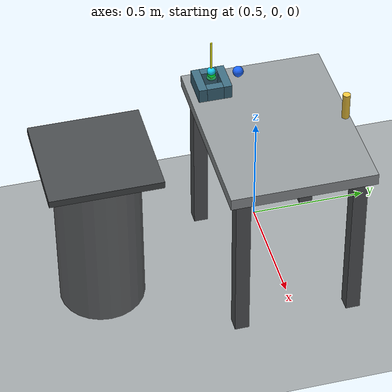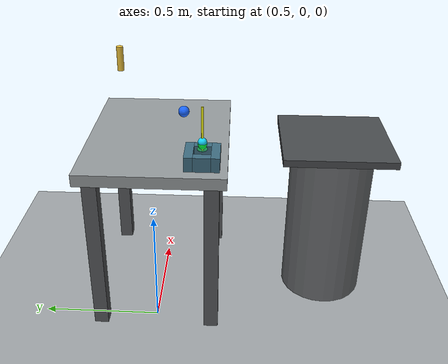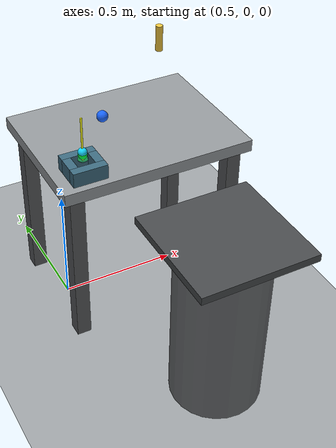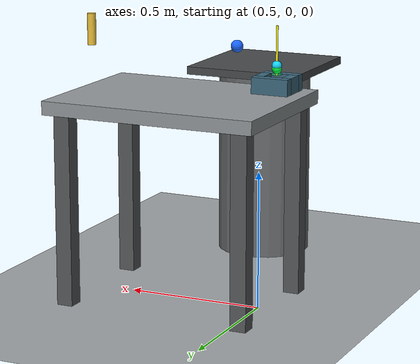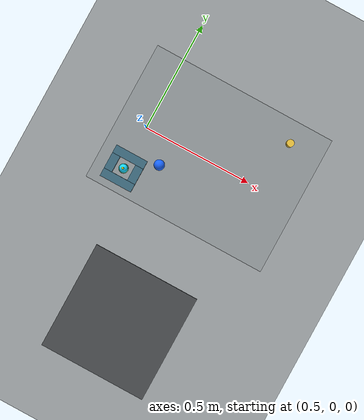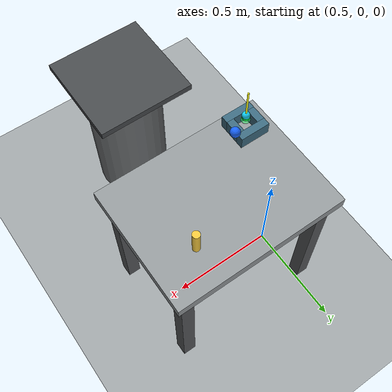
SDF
<?xml version="1.0"?>
<sdf version="1.9">
  <world name="peg_in_hole_insertion_validation_world">
    <physics name="1ms" type="ignored">
      <max_step_size>0.001</max_step_size>
      <real_time_factor>1.0</real_time_factor>
      <real_time_update_rate>1000</real_time_update_rate>
    </physics>

    <plugin name="gz::sim::systems::Physics" filename="ignition-gazebo-physics-system"/>
    <plugin name="gz::sim::systems::UserCommands" filename="ignition-gazebo-user-commands-system"/>
    <plugin name="gz::sim::systems::SceneBroadcaster" filename="ignition-gazebo-scene-broadcaster-system"/>
    <plugin name="gz::sim::systems::Contact" filename="ignition-gazebo-contact-system"/>

    <gravity>0 0 -9.81</gravity>
    <magnetic_field>6.0e-6 2.3e-5 -4.2e-5</magnetic_field>
    <atmosphere type="adiabatic"/>

    <scene>
      <ambient>0.45 0.45 0.45 1</ambient>
      <background>0.72 0.74 0.76 1</background>
      <shadows>true</shadows>
    </scene>

    <model name="ground_plane">
      <static>true</static>
      <link name="link">
        <collision name="collision">
          <geometry><plane><normal>0 0 1</normal><size>20 20</size></plane></geometry>
        </collision>
        <visual name="visual">
          <geometry><plane><normal>0 0 1</normal><size>20 20</size></plane></geometry>
          <material>
            <ambient>0.55 0.57 0.58 1</ambient>
            <diffuse>0.62 0.64 0.65 1</diffuse>
          </material>
        </visual>
      </link>
    </model>

    <include>
      <name>work_table</name>
      <uri>model://work_table</uri>
      <pose>0.80 0 0 0 0 0</pose>
    </include>

    <include>
      <name>robot_pedestal</name>
      <uri>model://robot_pedestal</uri>
      <pose>0.80 -0.75 0.0 0 0 0</pose>
    </include>

    <model name="peg">
      <static>true</static>
      <pose>1.05 0.20 1.000 0 0 0</pose>
      <link name="peg_link">
        <gravity>false</gravity>
        <inertial>
          <mass>0.08</mass>
          <inertia>
            <ixx>8.466667e-05</ixx>
            <iyy>8.466667e-05</iyy>
            <izz>9.000000e-06</izz>
            <ixy>0</ixy>
            <ixz>0</ixz>
            <iyz>0</iyz>
          </inertia>
        </inertial>
        <collision name="peg_collision">
          <geometry>
            <cylinder>
              <radius>0.015</radius>
              <length>0.110</length>
            </cylinder>
          </geometry>
          <surface>
            <contact>
              <ode>
                <kp>3000</kp>
                <kd>40</kd>
              </ode>
            </contact>
            <friction>
              <ode>
                <mu>0.8</mu>
                <mu2>0.8</mu2>
              </ode>
            </friction>
          </surface>
        </collision>
        <visual name="peg_visual">
          <geometry>
            <cylinder>
              <radius>0.015</radius>
              <length>0.110</length>
            </cylinder>
          </geometry>
          <material>
            <ambient>0.80 0.68 0.20 1</ambient>
            <diffuse>0.95 0.78 0.24 1</diffuse>
            <specular>0.35 0.30 0.12 1</specular>
          </material>
        </visual>
        <sensor name="peg_contact_sensor" type="contact">
          <always_on>true</always_on>
          <update_rate>100.0</update_rate>
          <topic>/world/peg_in_hole_insertion_validation_world/model/peg/link/peg_link/sensor/peg_contact_sensor/contact</topic>
          <contact>
            <collision>peg_collision</collision>
          </contact>
        </sensor>
        <sensor name="peg_compat_contact_sensor" type="contact">
          <always_on>true</always_on>
          <update_rate>100.0</update_rate>
          <topic>/gazebo/contacts/peg</topic>
          <contact>
            <collision>peg_collision</collision>
          </contact>
        </sensor>
      </link>
    </model>

    <model name="hole_block">
      <static>true</static>
      <pose>0.52 -0.20 0.78 0 0 0</pose>
      <link name="hole_block_link">
        <collision name="hole_block_front_collision">
          <pose>0 -0.0525 0 0 0 0</pose>
          <geometry><box><size>0.140 0.035 0.060</size></box></geometry>
        </collision>
        <collision name="hole_block_back_collision">
          <pose>0 0.0525 0 0 0 0</pose>
          <geometry><box><size>0.140 0.035 0.060</size></box></geometry>
        </collision>
        <collision name="hole_block_left_collision">
          <pose>-0.0525 0 0 0 0 0</pose>
          <geometry><box><size>0.035 0.070 0.060</size></box></geometry>
        </collision>
        <collision name="hole_block_right_collision">
          <pose>0.0525 0 0 0 0 0</pose>
          <geometry><box><size>0.035 0.070 0.060</size></box></geometry>
        </collision>
        <visual name="hole_block_front_visual">
          <pose>0 -0.0525 0 0 0 0</pose>
          <geometry><box><size>0.140 0.035 0.060</size></box></geometry>
          <material>
            <ambient>0.16 0.28 0.35 1</ambient>
            <diffuse>0.24 0.42 0.50 1</diffuse>
          </material>
        </visual>
        <visual name="hole_block_back_visual">
          <pose>0 0.0525 0 0 0 0</pose>
          <geometry><box><size>0.140 0.035 0.060</size></box></geometry>
          <material>
            <ambient>0.16 0.28 0.35 1</ambient>
            <diffuse>0.24 0.42 0.50 1</diffuse>
          </material>
        </visual>
        <visual name="hole_block_left_visual">
          <pose>-0.0525 0 0 0 0 0</pose>
          <geometry><box><size>0.035 0.070 0.060</size></box></geometry>
          <material>
            <ambient>0.16 0.28 0.35 1</ambient>
            <diffuse>0.24 0.42 0.50 1</diffuse>
          </material>
        </visual>
        <visual name="hole_block_right_visual">
          <pose>0.0525 0 0 0 0 0</pose>
          <geometry><box><size>0.035 0.070 0.060</size></box></geometry>
          <material>
            <ambient>0.16 0.28 0.35 1</ambient>
            <diffuse>0.24 0.42 0.50 1</diffuse>
          </material>
        </visual>
        <sensor name="hole_contact_sensor" type="contact">
          <always_on>true</always_on>
          <update_rate>100.0</update_rate>
          <topic>/world/peg_in_hole_insertion_validation_world/model/hole_block/link/hole_block_link/sensor/hole_contact_sensor/contact</topic>
          <contact>
            <collision>hole_block_front_collision</collision>
            <collision>hole_block_back_collision</collision>
            <collision>hole_block_left_collision</collision>
            <collision>hole_block_right_collision</collision>
          </contact>
        </sensor>
        <sensor name="hole_compat_contact_sensor" type="contact">
          <always_on>true</always_on>
          <update_rate>100.0</update_rate>
          <topic>/gazebo/contacts/hole</topic>
          <contact>
            <collision>hole_block_front_collision</collision>
            <collision>hole_block_back_collision</collision>
            <collision>hole_block_left_collision</collision>
            <collision>hole_block_right_collision</collision>
          </contact>
        </sensor>
      </link>
    </model>

    <model name="insertion_target_region">
      <static>true</static>
      <pose>0.52 -0.20 0.815 0 0 0</pose>
      <link name="insertion_target_region_link">
        <collision name="target_region_collision">
          <geometry>
            <cylinder>
              <radius>0.012</radius>
              <length>0.006</length>
            </cylinder>
          </geometry>
        </collision>
        <visual name="target_region_visual">
          <geometry>
            <cylinder>
              <radius>0.020</radius>
              <length>0.004</length>
            </cylinder>
          </geometry>
          <material>
            <ambient>0.10 0.80 0.30 0.45</ambient>
            <diffuse>0.10 0.95 0.35 0.45</diffuse>
            <emissive>0.02 0.22 0.08 1</emissive>
          </material>
        </visual>
        <sensor name="target_contact_sensor" type="contact">
          <always_on>true</always_on>
          <update_rate>100.0</update_rate>
          <topic>/gazebo/contacts/target</topic>
          <contact>
            <collision>target_region_collision</collision>
          </contact>
        </sensor>
      </link>
    </model>

    <model name="insertion_axis_marker">
      <static>true</static>
      <pose>0.52 -0.20 0.90 0 0 0</pose>
      <link name="insertion_axis_marker_link">
        <visual name="insertion_axis_marker_visual">
          <geometry>
            <cylinder>
              <radius>0.004</radius>
              <length>0.180</length>
            </cylinder>
          </geometry>
          <material>
            <ambient>0.95 0.95 0.05 1</ambient>
            <diffuse>1.00 1.00 0.10 1</diffuse>
            <emissive>0.25 0.25 0.02 1</emissive>
          </material>
        </visual>
      </link>
    </model>

    <model name="hole_center_marker">
      <static>true</static>
      <pose>0.52 -0.20 0.845 0 0 0</pose>
      <link name="hole_center_marker_link">
        <visual name="hole_center_marker_visual">
          <geometry><sphere><radius>0.018</radius></sphere></geometry>
          <material>
            <ambient>0.05 0.65 0.95 1</ambient>
            <diffuse>0.08 0.85 1.00 1</diffuse>
            <emissive>0.01 0.18 0.28 1</emissive>
          </material>
        </visual>
      </link>
    </model>

    <model name="pre_insertion_pose_marker">
      <static>true</static>
      <pose>0.64 -0.12 0.92 0 0 0</pose>
      <link name="pre_insertion_pose_marker_link">
        <visual name="pre_insertion_pose_marker_visual">
          <geometry><sphere><radius>0.022</radius></sphere></geometry>
          <material>
            <ambient>0.05 0.25 0.95 1</ambient>
            <diffuse>0.10 0.40 1.00 1</diffuse>
            <emissive>0.01 0.08 0.35 1</emissive>
          </material>
        </visual>
      </link>
    </model>

    <model name="final_insertion_pose_marker">
      <static>true</static>
      <pose>0.52 -0.20 0.835 0 0 0</pose>
      <link name="final_insertion_pose_marker_link">
        <visual name="final_insertion_pose_marker_visual">
          <geometry><sphere><radius>0.018</radius></sphere></geometry>
          <material>
            <ambient>0.00 0.90 0.20 1</ambient>
            <diffuse>0.00 1.00 0.25 1</diffuse>
            <emissive>0.00 0.35 0.08 1</emissive>
          </material>
        </visual>
      </link>
    </model>

    <!--
      v2.3 coordinate diagnostics frames. These are fixed world/object anchors
      for validating Cartesian insertion targets before any IK or trajectory
      generation is attempted.
    -->
    <frame name="hole_center" attached_to="hole_center_marker">
      <pose relative_to="hole_center_marker">0 0 0 0 0 0</pose>
    </frame>

    <frame name="insertion_axis" attached_to="insertion_axis_marker">
      <pose relative_to="insertion_axis_marker">0 0 0 0 0 0</pose>
    </frame>

    <frame name="pre_insertion_pose" attached_to="pre_insertion_pose_marker">
      <pose relative_to="pre_insertion_pose_marker">0 0 0 0 0 0</pose>
    </frame>

    <frame name="final_insertion_pose" attached_to="final_insertion_pose_marker">
      <pose relative_to="final_insertion_pose_marker">0 0 0 0 0 0</pose>
    </frame>

    <light name="key_area_light" type="point">
      <pose>0.20 -0.60 1.80 0 0 0</pose>
      <cast_shadows>true</cast_shadows>
      <intensity>1.4</intensity>
      <diffuse>0.95 0.95 0.90 1</diffuse>
      <specular>0.35 0.35 0.35 1</specular>
      <attenuation>
        <range>5.0</range>
        <constant>0.6</constant>
        <linear>0.15</linear>
        <quadratic>0.02</quadratic>
      </attenuation>
    </light>

    <light name="sun" type="directional">
      <pose>0 0 10 0 0 0</pose>
      <cast_shadows>true</cast_shadows>
      <intensity>0.8</intensity>
      <direction>-0.4 0.2 -0.9</direction>
      <diffuse>0.80 0.82 0.85 1</diffuse>
      <specular>0.20 0.20 0.20 1</specular>
    </light>
  </world>
</sdf>

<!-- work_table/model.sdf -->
<sdf version="1.9">
  <model name="work_table">
    <static>true</static>
    <link name="table_link">
      <!-- Research-cell bench: 0.80 m x 0.60 m top, 0.05 m thick, with a 0.75 m work surface. -->
      <collision name="table_collision">
        <pose>0 0 0.725 0 0 0</pose>
        <geometry><box><size>0.80 0.60 0.05</size></box></geometry>
        <surface>
          <friction><ode><mu>0.8</mu><mu2>0.8</mu2></ode></friction>
        </surface>
      </collision>
      <visual name="tabletop_visual">
        <pose>0 0 0.725 0 0 0</pose>
        <geometry><box><size>0.80 0.60 0.05</size></box></geometry>
        <material>
          <ambient>0.45 0.47 0.48 1</ambient>
          <diffuse>0.58 0.60 0.61 1</diffuse>
          <specular>0.15 0.15 0.15 1</specular>
        </material>
      </visual>

      <collision name="leg_front_left_collision">
        <pose>0.34 0.24 0.35 0 0 0</pose>
        <geometry><box><size>0.06 0.06 0.70</size></box></geometry>
      </collision>
      <visual name="leg_front_left_visual">
        <pose>0.34 0.24 0.35 0 0 0</pose>
        <geometry><box><size>0.06 0.06 0.70</size></box></geometry>
        <material><ambient>0.28 0.29 0.30 1</ambient><diffuse>0.34 0.35 0.36 1</diffuse></material>
      </visual>

      <collision name="leg_front_right_collision">
        <pose>0.34 -0.24 0.35 0 0 0</pose>
        <geometry><box><size>0.06 0.06 0.70</size></box></geometry>
      </collision>
      <visual name="leg_front_right_visual">
        <pose>0.34 -0.24 0.35 0 0 0</pose>
        <geometry><box><size>0.06 0.06 0.70</size></box></geometry>
        <material><ambient>0.28 0.29 0.30 1</ambient><diffuse>0.34 0.35 0.36 1</diffuse></material>
      </visual>

      <collision name="leg_rear_left_collision">
        <pose>-0.34 0.24 0.35 0 0 0</pose>
        <geometry><box><size>0.06 0.06 0.70</size></box></geometry>
      </collision>
      <visual name="leg_rear_left_visual">
        <pose>-0.34 0.24 0.35 0 0 0</pose>
        <geometry><box><size>0.06 0.06 0.70</size></box></geometry>
        <material><ambient>0.28 0.29 0.30 1</ambient><diffuse>0.34 0.35 0.36 1</diffuse></material>
      </visual>

      <collision name="leg_rear_right_collision">
        <pose>-0.34 -0.24 0.35 0 0 0</pose>
        <geometry><box><size>0.06 0.06 0.70</size></box></geometry>
      </collision>
      <visual name="leg_rear_right_visual">
        <pose>-0.34 -0.24 0.35 0 0 0</pose>
        <geometry><box><size>0.06 0.06 0.70</size></box></geometry>
        <material><ambient>0.28 0.29 0.30 1</ambient><diffuse>0.34 0.35 0.36 1</diffuse></material>
      </visual>
    </link>
  </model>
</sdf>

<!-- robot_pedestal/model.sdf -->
<sdf version="1.9">
  <model name="robot_pedestal">
    <static>true</static>
    <link name="pedestal_link">
      <!-- 0.75 m static stand: its top supports the KUKA base at table-surface height. -->
      <collision name="column_collision">
        <pose>0 0 0.36 0 0 0</pose>
        <geometry>
          <cylinder>
            <radius>0.18</radius>
            <length>0.72</length>
          </cylinder>
        </geometry>
        <surface>
          <friction><ode><mu>0.9</mu><mu2>0.9</mu2></ode></friction>
        </surface>
      </collision>
      <visual name="column_visual">
        <pose>0 0 0.36 0 0 0</pose>
        <geometry>
          <cylinder>
            <radius>0.18</radius>
            <length>0.72</length>
          </cylinder>
        </geometry>
        <material>
          <ambient>0.30 0.31 0.32 1</ambient>
          <diffuse>0.42 0.43 0.44 1</diffuse>
          <specular>0.20 0.20 0.20 1</specular>
        </material>
      </visual>

      <collision name="top_plate_collision">
        <pose>0 0 0.735 0 0 0</pose>
        <geometry><box><size>0.46 0.46 0.03</size></box></geometry>
      </collision>
      <visual name="top_plate_visual">
        <pose>0 0 0.735 0 0 0</pose>
        <geometry><box><size>0.46 0.46 0.03</size></box></geometry>
        <material>
          <ambient>0.20 0.21 0.22 1</ambient>
          <diffuse>0.28 0.29 0.30 1</diffuse>
          <specular>0.25 0.25 0.25 1</specular>
        </material>
      </visual>
    </link>
  </model>
</sdf>
